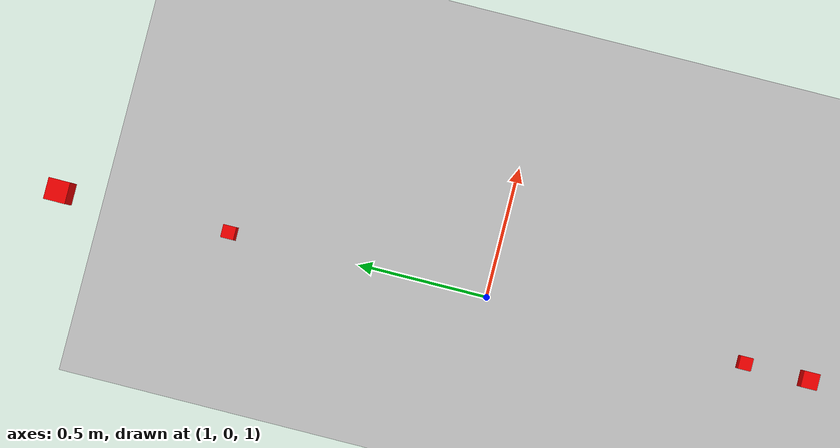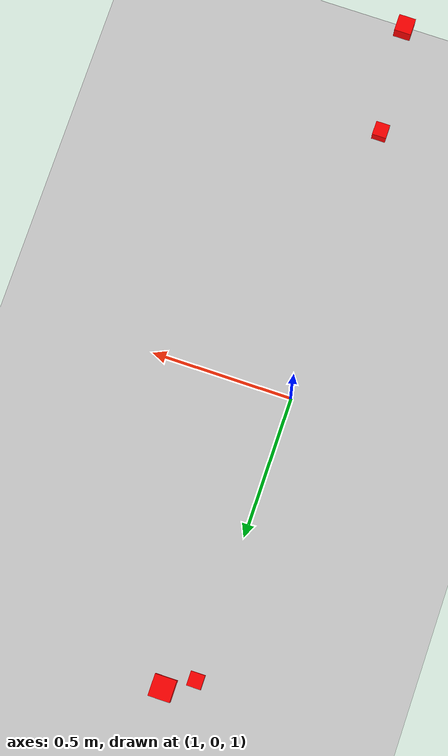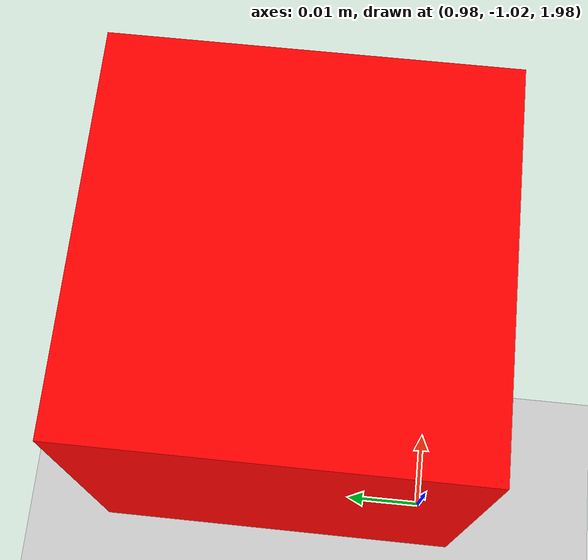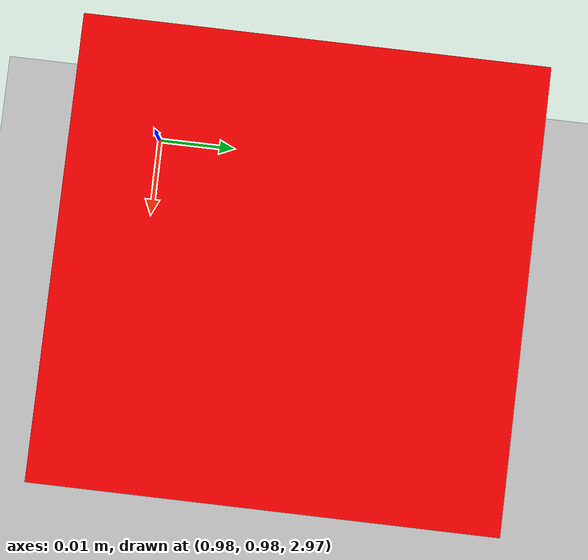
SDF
<sdf version="1.6">
 <world name="default">
  <model name="ground_plane">
   <static>1</static>
   <link name="link">
    <collision name="collision">
     <geometry><plane><normal>0 0 1</normal><size>100 100</size></plane></geometry>
     <surface>
      <contact><collide_bitmask>65535</collide_bitmask></contact>
      <friction><ode><mu>100</mu><mu2>50</mu2></ode></friction>
     </surface>
    </collision>
    <visual name="visual">
     <cast_shadows>0</cast_shadows>
     <geometry><plane><normal>0 0 1</normal><size>100 100</size></plane></geometry>
     <material>
      <script><uri>file://media/materials/scripts/gazebo.material</uri><name>Gazebo/Grey</name></script>
     </material>
    </visual>
   </link>
  </model>
  <light name="sun" type="directional">
   <pose>0 0 10 0 -0 0</pose>
   <diffuse>0.8 0.8 0.8 1</diffuse>
   <specular>0.2 0.2 0.2 1</specular>
   <attenuation>
    <range>1000</range>
    <constant>0.9</constant>
    <linear>0.01</linear>
    <quadratic>0.001</quadratic>
   </attenuation>
   <direction>-0.5 0.1 -0.9</direction>
  </light>
  <gravity>0 0 -9.8</gravity>
  <magnetic_field>6e-06 2.3e-05 -4.2e-05</magnetic_field>
  <atmosphere type="adiabatic"/>
  <physics name="default_physics" default="0" type="ode">
   <max_step_size>0.001</max_step_size>
   <real_time_factor>1</real_time_factor>
   <real_time_update_rate>1000</real_time_update_rate>
  </physics>
  <scene><ambient>0.4 0.4 0.4 1</ambient><background>0.7 0.7 0.7 1</background><shadows>1</shadows></scene>
  <spherical_coordinates>
   <surface_model>EARTH_WGS84</surface_model>
   <latitude_deg>0</latitude_deg>
   <longitude_deg>0</longitude_deg>
   <elevation>0</elevation>
   <heading_deg>0</heading_deg>
  </spherical_coordinates>
  <model name="unit_box_3">
   <link name="link">
    <inertial>
     <mass>0.208095</mass>
     <inertia>
      <ixx>0.0180922</ixx>
      <ixy>0</ixy>
      <ixz>0</ixz>
      <iyy>0.0180922</iyy>
      <iyz>0</iyz>
      <izz>0.0346825</izz>
     </inertia>
    </inertial>
    <visual name="visual">
     <geometry><box><size>0.05 0.05 0.05</size></box></geometry>
     <material>
      <script><name>Gazebo/Grey</name><uri>file://media/materials/scripts/gazebo.material</uri></script>
      <shader type="pixel"><normal_map>__default__</normal_map></shader>
      <ambient>1 0 0 1</ambient>
      <diffuse>0.7 0.7 0.7 1</diffuse>
      <specular>0.01 0.01 0.01 1</specular>
      <emissive>0 0 0 1</emissive>
     </material>
    </visual>
   </link>
   <static>1</static>
   <pose>1 -1 2 0 -0 0</pose>
  </model>
  <model name="unit_box">
   <link name="link">
    <inertial>
     <mass>0.208095</mass>
     <inertia>
      <ixx>0.0180922</ixx>
      <ixy>0</ixy>
      <ixz>0</ixz>
      <iyy>0.0180922</iyy>
      <iyz>0</iyz>
      <izz>0.0346825</izz>
     </inertia>
    </inertial>
    <visual name="visual">
     <geometry><box><size>0.05 0.05 0.05</size></box></geometry>
     <material>
      <script><name>Gazebo/Grey</name><uri>file://media/materials/scripts/gazebo.material</uri></script>
      <shader type="pixel"><normal_map>__default__</normal_map></shader>
      <ambient>1 0 0 1</ambient>
      <diffuse>0.7 0.7 0.7 1</diffuse>
      <specular>0.01 0.01 0.01 1</specular>
      <emissive>0 0 0 1</emissive>
     </material>
    </visual>
   </link>
   <static>1</static>
   <pose>1 -1 1 0 -0 0</pose>
  </model>
  <model name="unit_box_0">
   <link name="link">
    <inertial>
     <mass>0.208095</mass>
     <inertia>
      <ixx>0.0180922</ixx>
      <ixy>0</ixy>
      <ixz>0</ixz>
      <iyy>0.0180922</iyy>
      <iyz>0</iyz>
      <izz>0.0346825</izz>
     </inertia>
    </inertial>
    <visual name="visual">
     <geometry><box><size>0.05 0.05 0.05</size></box></geometry>
     <material>
      <script><name>Gazebo/Grey</name><uri>file://media/materials/scripts/gazebo.material</uri></script>
      <shader type="pixel"><normal_map>__default__</normal_map></shader>
      <ambient>1 0 0 1</ambient>
      <diffuse>0.7 0.7 0.7 1</diffuse>
      <specular>0.01 0.01 0.01 1</specular>
      <emissive>0 0 0 1</emissive>
     </material>
    </visual>
   </link>
   <static>1</static>
   <pose>1 1 1 0 -0 0</pose>
  </model>
  <model name="unit_box_1">
   <link name="link">
    <inertial>
     <mass>0.208095</mass>
     <inertia>
      <ixx>0.0180922</ixx>
      <ixy>0</ixy>
      <ixz>0</ixz>
      <iyy>0.0180922</iyy>
      <iyz>0</iyz>
      <izz>0.0346825</izz>
     </inertia>
    </inertial>
    <visual name="visual">
     <geometry><box><size>0.05 0.05 0.05</size></box></geometry>
     <material>
      <script><name>Gazebo/Grey</name><uri>file://media/materials/scripts/gazebo.material</uri></script>
      <shader type="pixel"><normal_map>__default__</normal_map></shader>
      <ambient>1 0 0 1</ambient>
      <diffuse>0.7 0.7 0.7 1</diffuse>
      <specular>0.01 0.01 0.01 1</specular>
      <emissive>0 0 0 1</emissive>
     </material>
    </visual>
   </link>
   <static>1</static>
   <pose>1 1 3 0 -0 0</pose>
  </model>
 </world>
</sdf>
